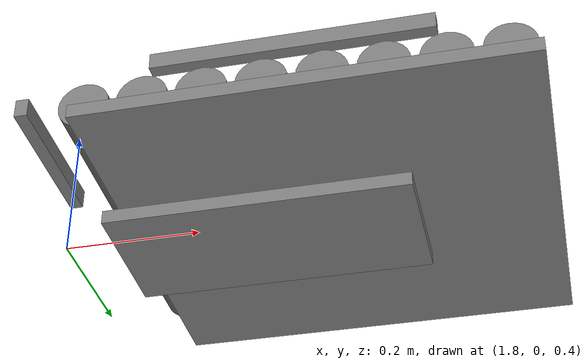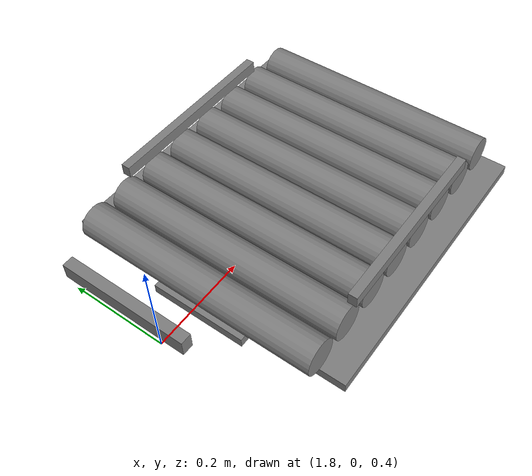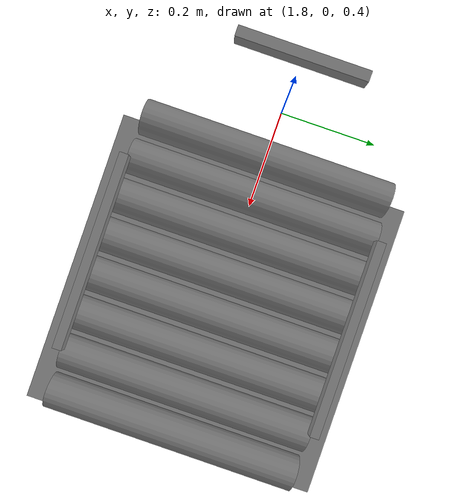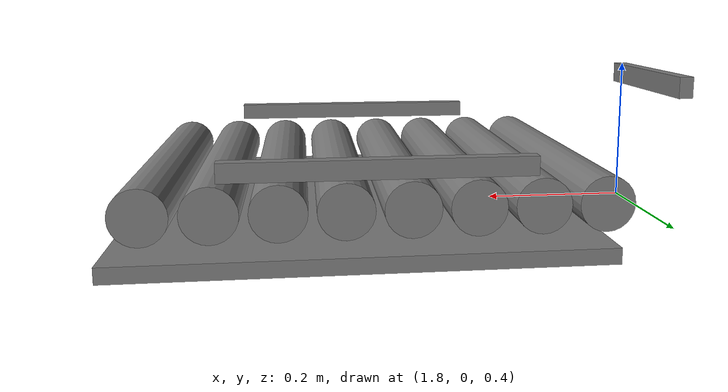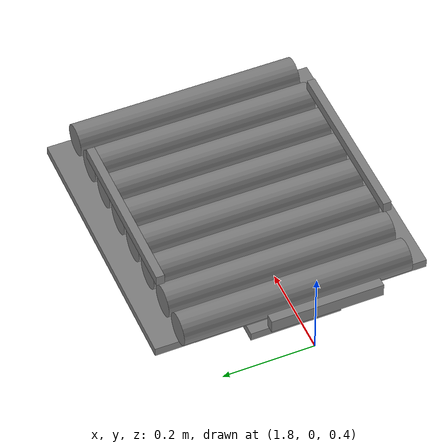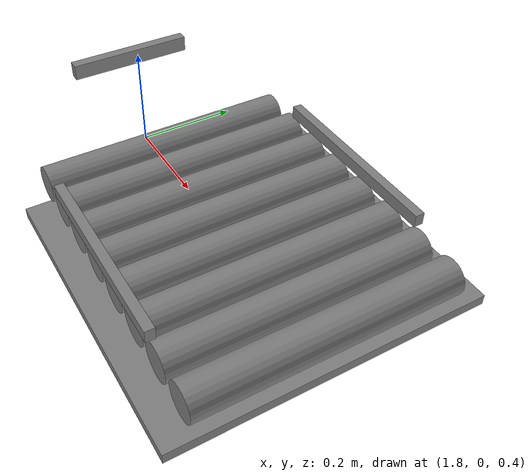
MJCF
<mujoco model="010 C transfer rig (real V1 tray)"><option timestep=".002" integrator="implicitfast" /><default><geom friction="0.2500 0.005 0.001" condim="4" /></default><worldbody><body name="deck" pos="1.9200000000000002 0 0.485" quat="1.0 0 0 0.0"><joint name="deck_slide" type="slide" axis="1 0 0" damping="0" /><geom name="deck_frame" type="box" size="0.3 0.3 0.01" pos="0.29 0 -0.085" mass="5" condim="4" friction="0.2500 0.005 0.001" /><body name="deck_roller_0" pos="-0.010000000000000009 0 -0.035"><joint name="deck_roller_0_joint" type="hinge" axis="0 1 0" damping=".01" /><geom name="deck_roller_0" type="cylinder" size="0.035 0.25" quat=".70710678 .70710678 0 0" mass=".4" condim="4" friction="0.2500 0.005 0.001" /></body><body name="deck_roller_1" pos="0.06999999999999999 0 -0.035"><joint name="deck_roller_1_joint" type="hinge" axis="0 1 0" damping=".01" /><geom name="deck_roller_1" type="cylinder" size="0.035 0.25" quat=".70710678 .70710678 0 0" mass=".4" condim="4" friction="0.2500 0.005 0.001" /></body><body name="deck_roller_2" pos="0.15 0 -0.035"><joint name="deck_roller_2_joint" type="hinge" axis="0 1 0" damping=".01" /><geom name="deck_roller_2" type="cylinder" size="0.035 0.25" quat=".70710678 .70710678 0 0" mass=".4" condim="4" friction="0.2500 0.005 0.001" /></body><body name="deck_roller_3" pos="0.22999999999999998 0 -0.035"><joint name="deck_roller_3_joint" type="hinge" axis="0 1 0" damping=".01" /><geom name="deck_roller_3" type="cylinder" size="0.035 0.25" quat=".70710678 .70710678 0 0" mass=".4" condim="4" friction="0.2500 0.005 0.001" /></body><body name="deck_roller_4" pos="0.31 0 -0.035"><joint name="deck_roller_4_joint" type="hinge" axis="0 1 0" damping=".01" /><geom name="deck_roller_4" type="cylinder" size="0.035 0.25" quat=".70710678 .70710678 0 0" mass=".4" condim="4" friction="0.2500 0.005 0.001" /></body><body name="deck_roller_5" pos="0.39 0 -0.035"><joint name="deck_roller_5_joint" type="hinge" axis="0 1 0" damping=".01" /><geom name="deck_roller_5" type="cylinder" size="0.035 0.25" quat=".70710678 .70710678 0 0" mass=".4" condim="4" friction="0.2500 0.005 0.001" /></body><body name="deck_roller_6" pos="0.47 0 -0.035"><joint name="deck_roller_6_joint" type="hinge" axis="0 1 0" damping=".01" /><geom name="deck_roller_6" type="cylinder" size="0.035 0.25" quat=".70710678 .70710678 0 0" mass=".4" condim="4" friction="0.2500 0.005 0.001" /></body><body name="deck_roller_7" pos="0.55 0 -0.035"><joint name="deck_roller_7_joint" type="hinge" axis="0 1 0" damping=".01" /><geom name="deck_roller_7" type="cylinder" size="0.035 0.25" quat=".70710678 .70710678 0 0" mass=".4" condim="4" friction="0.2500 0.005 0.001" /></body><geom name="guide_rail_-1" type="box" size="0.19 0.009 0.012" pos="0.27 -0.2495 0.017" mass=".3" condim="4" friction="0.1000 0.005 0.001" /><geom name="guide_rail_+1" type="box" size="0.19 0.009 0.012" pos="0.27 0.2495 0.017" mass=".3" condim="4" friction="0.1000 0.005 0.001" /><body name="pusher_carriage" pos="0 0 0"><joint name="pusher_slide_joint" type="slide" axis="1 0 0" damping="0" range="0 0.39" limited="true" /><geom name="pusher_carriage_body" type="box" size="0.215 0.1 0.01" pos="0.185 0 -0.11000000000000001" mass="1" condim="4" friction="0.2500 0.005 0.001" /><body name="pusher_blade" pos="-0.165 0 0.07600000000000001"><joint name="pusher_lift_joint" type="slide" axis="0 0 1" damping="0" range="0 0.001" limited="true" /><geom name="rear_pusher" type="box" size="0.01 0.12 0.015" pos="0 0 0.015" mass=".5" condim="4" friction="0.2500 0.005 0.001" /></body></body></body></worldbody><actuator><velocity name="fixed_roller_0_0" joint="fixed_roller_0_0_joint" kv="2" ctrllimited="true" ctrlrange="-5 5" forcelimited="true" forcerange="-2 2" /><velocity name="fixed_roller_0_1" joint="fixed_roller_0_1_joint" kv="2" ctrllimited="true" ctrlrange="-5 5" forcelimited="true" forcerange="-2 2" /><velocity name="fixed_roller_0_2" joint="fixed_roller_0_2_joint" kv="2" ctrllimited="true" ctrlrange="-5 5" forcelimited="true" forcerange="-2 2" /><velocity name="fixed_roller_0_3" joint="fixed_roller_0_3_joint" kv="2" ctrllimited="true" ctrlrange="-5 5" forcelimited="true" forcerange="-2 2" /><velocity name="fixed_roller_0_4" joint="fixed_roller_0_4_joint" kv="2" ctrllimited="true" ctrlrange="-5 5" forcelimited="true" forcerange="-2 2" /><velocity name="fixed_roller_0_5" joint="fixed_roller_0_5_joint" kv="2" ctrllimited="true" ctrlrange="-5 5" forcelimited="true" forcerange="-2 2" /><velocity name="fixed_roller_0_6" joint="fixed_roller_0_6_joint" kv="2" ctrllimited="true" ctrlrange="-5 5" forcelimited="true" forcerange="-2 2" /><velocity name="fixed_roller_0_7" joint="fixed_roller_0_7_joint" kv="2" ctrllimited="true" ctrlrange="-5 5" forcelimited="true" forcerange="-2 2" /><velocity name="fixed_roller_1_0" joint="fixed_roller_1_0_joint" kv="2" ctrllimited="true" ctrlrange="-5 5" forcelimited="true" forcerange="-2 2" /><velocity name="fixed_roller_1_1" joint="fixed_roller_1_1_joint" kv="2" ctrllimited="true" ctrlrange="-5 5" forcelimited="true" forcerange="-2 2" /><velocity name="fixed_roller_1_2" joint="fixed_roller_1_2_joint" kv="2" ctrllimited="true" ctrlrange="-5 5" forcelimited="true" forcerange="-2 2" /><velocity name="fixed_roller_1_3" joint="fixed_roller_1_3_joint" kv="2" ctrllimited="true" ctrlrange="-5 5" forcelimited="true" forcerange="-2 2" /><velocity name="fixed_roller_1_4" joint="fixed_roller_1_4_joint" kv="2" ctrllimited="true" ctrlrange="-5 5" forcelimited="true" forcerange="-2 2" /><velocity name="fixed_roller_1_5" joint="fixed_roller_1_5_joint" kv="2" ctrllimited="true" ctrlrange="-5 5" forcelimited="true" forcerange="-2 2" /><velocity name="fixed_roller_1_6" joint="fixed_roller_1_6_joint" kv="2" ctrllimited="true" ctrlrange="-5 5" forcelimited="true" forcerange="-2 2" /><velocity name="fixed_roller_1_7" joint="fixed_roller_1_7_joint" kv="2" ctrllimited="true" ctrlrange="-5 5" forcelimited="true" forcerange="-2 2" /><velocity name="fixed_roller_2_0" joint="fixed_roller_2_0_joint" kv="2" ctrllimited="true" ctrlrange="-5 5" forcelimited="true" forcerange="-2 2" /><velocity name="fixed_roller_2_1" joint="fixed_roller_2_1_joint" kv="2" ctrllimited="true" ctrlrange="-5 5" forcelimited="true" forcerange="-2 2" /><velocity name="fixed_roller_2_2" joint="fixed_roller_2_2_joint" kv="2" ctrllimited="true" ctrlrange="-5 5" forcelimited="true" forcerange="-2 2" /><velocity name="fixed_roller_2_3" joint="fixed_roller_2_3_joint" kv="2" ctrllimited="true" ctrlrange="-5 5" forcelimited="true" forcerange="-2 2" /><velocity name="fixed_roller_2_4" joint="fixed_roller_2_4_joint" kv="2" ctrllimited="true" ctrlrange="-5 5" forcelimited="true" forcerange="-2 2" /><velocity name="fixed_roller_2_5" joint="fixed_roller_2_5_joint" kv="2" ctrllimited="true" ctrlrange="-5 5" forcelimited="true" forcerange="-2 2" /><velocity name="fixed_roller_2_6" joint="fixed_roller_2_6_joint" kv="2" ctrllimited="true" ctrlrange="-5 5" forcelimited="true" forcerange="-2 2" /><velocity name="fixed_roller_2_7" joint="fixed_roller_2_7_joint" kv="2" ctrllimited="true" ctrlrange="-5 5" forcelimited="true" forcerange="-2 2" /><velocity name="recv_roller_0" joint="recv_roller_0_joint" kv="2" ctrllimited="true" ctrlrange="-5 5" forcelimited="true" forcerange="-2 2" /><velocity name="recv_roller_1" joint="recv_roller_1_joint" kv="2" ctrllimited="true" ctrlrange="-5 5" forcelimited="true" forcerange="-2 2" /><velocity name="recv_roller_2" joint="recv_roller_2_joint" kv="2" ctrllimited="true" ctrlrange="-5 5" forcelimited="true" forcerange="-2 2" /><velocity name="recv_roller_3" joint="recv_roller_3_joint" kv="2" ctrllimited="true" ctrlrange="-5 5" forcelimited="true" forcerange="-2 2" /><velocity name="recv_roller_4" joint="recv_roller_4_joint" kv="2" ctrllimited="true" ctrlrange="-5 5" forcelimited="true" forcerange="-2 2" /><velocity name="recv_roller_5" joint="recv_roller_5_joint" kv="2" ctrllimited="true" ctrlrange="-5 5" forcelimited="true" forcerange="-2 2" /><velocity name="recv_roller_6" joint="recv_roller_6_joint" kv="2" ctrllimited="true" ctrlrange="-5 5" forcelimited="true" forcerange="-2 2" /><velocity name="recv_roller_7" joint="recv_roller_7_joint" kv="2" ctrllimited="true" ctrlrange="-5 5" forcelimited="true" forcerange="-2 2" /><velocity name="recv_roller_8" joint="recv_roller_8_joint" kv="2" ctrllimited="true" ctrlrange="-5 5" forcelimited="true" forcerange="-2 2" /><velocity name="recv_roller_9" joint="recv_roller_9_joint" kv="2" ctrllimited="true" ctrlrange="-5 5" forcelimited="true" forcerange="-2 2" /><velocity name="recv_roller_10" joint="recv_roller_10_joint" kv="2" ctrllimited="true" ctrlrange="-5 5" forcelimited="true" forcerange="-2 2" /><velocity name="recv_roller_11" joint="recv_roller_11_joint" kv="2" ctrllimited="true" ctrlrange="-5 5" forcelimited="true" forcerange="-2 2" /><velocity name="recv_roller_12" joint="recv_roller_12_joint" kv="2" ctrllimited="true" ctrlrange="-5 5" forcelimited="true" forcerange="-2 2" /><velocity name="recv_roller_13" joint="recv_roller_13_joint" kv="2" ctrllimited="true" ctrlrange="-5 5" forcelimited="true" forcerange="-2 2" /><position name="deck_drive" joint="deck_slide" kp="20000" kv="200" ctrllimited="true" ctrlrange="-0.5 1.5" forcelimited="true" forcerange="-3000 3000" /><velocity name="deck_roller_0" joint="deck_roller_0_joint" kv="2" ctrllimited="true" ctrlrange="-5 5" forcelimited="true" forcerange="-2 2" /><velocity name="deck_roller_1" joint="deck_roller_1_joint" kv="2" ctrllimited="true" ctrlrange="-5 5" forcelimited="true" forcerange="-2 2" /><velocity name="deck_roller_2" joint="deck_roller_2_joint" kv="2" ctrllimited="true" ctrlrange="-5 5" forcelimited="true" forcerange="-2 2" /><velocity name="deck_roller_3" joint="deck_roller_3_joint" kv="2" ctrllimited="true" ctrlrange="-5 5" forcelimited="true" forcerange="-2 2" /><velocity name="deck_roller_4" joint="deck_roller_4_joint" kv="2" ctrllimited="true" ctrlrange="-5 5" forcelimited="true" forcerange="-2 2" /><velocity name="deck_roller_5" joint="deck_roller_5_joint" kv="2" ctrllimited="true" ctrlrange="-5 5" forcelimited="true" forcerange="-2 2" /><velocity name="deck_roller_6" joint="deck_roller_6_joint" kv="2" ctrllimited="true" ctrlrange="-5 5" forcelimited="true" forcerange="-2 2" /><velocity name="deck_roller_7" joint="deck_roller_7_joint" kv="2" ctrllimited="true" ctrlrange="-5 5" forcelimited="true" forcerange="-2 2" /><position name="pusher_slide" joint="pusher_slide_joint" kp="4000" kv="150" ctrllimited="true" ctrlrange="0 0.39" forcelimited="true" forcerange="-200 200" /><position name="pusher_lift" joint="pusher_lift_joint" kp="2000" kv="100" ctrllimited="true" ctrlrange="0 0.001" forcelimited="true" forcerange="-30 30" /></actuator></mujoco>
